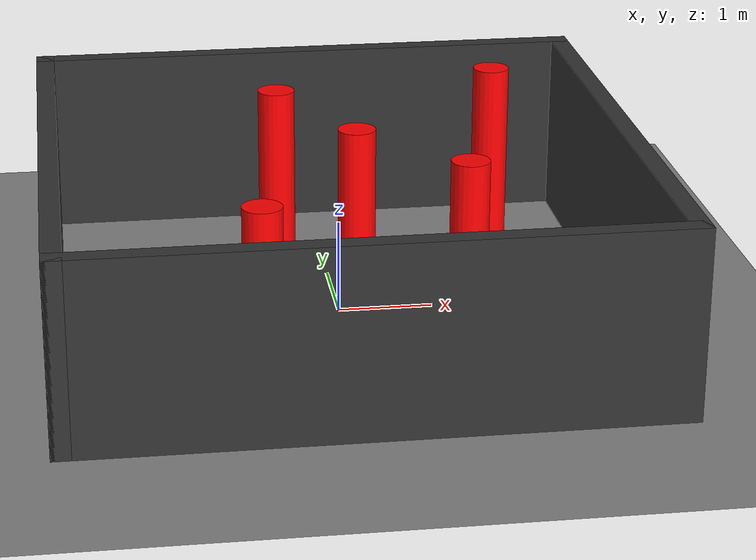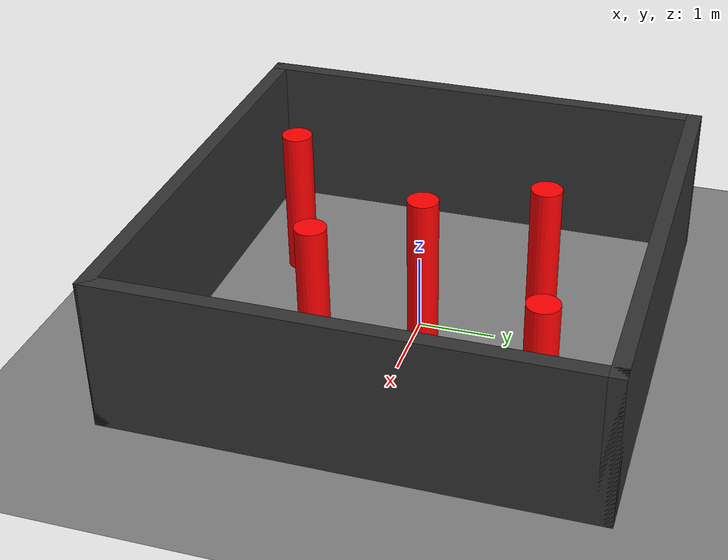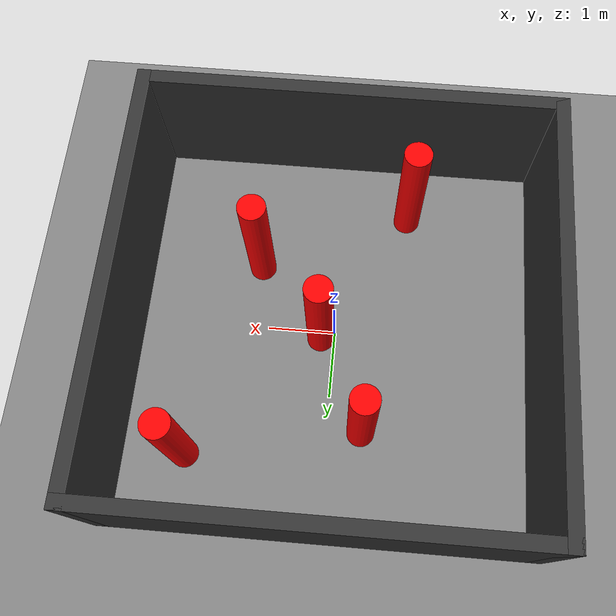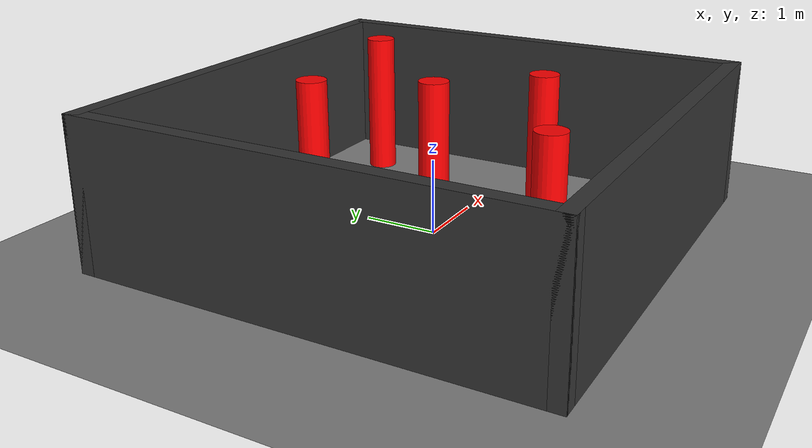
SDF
<?xml version="1.0"?>
<sdf version="1.6">
  <world name="compact_random_arena">

    <light name='sun_manual' type='directional'>
      <cast_shadows>1</cast_shadows>
      <pose>0 0 10 0 0 0</pose>
      <diffuse>0.8 0.8 0.8 1</diffuse>
      <specular>0.2 0.2 0.2 1</specular>
      <attenuation>
        <range>1000</range>
        <constant>0.9</constant>
        <linear>0.01</linear>
        <quadratic>0.001</quadratic>
      </attenuation>
      <direction>-0.5 0.1 -0.9</direction>
    </light>

    <model name='ground_plane'>
      <static>1</static>
      <link name='link'>
        <collision name='collision'>
          <geometry><plane><normal>0 0 1</normal><size>100 100</size></plane></geometry>
          <surface><friction><ode><mu>100</mu><mu2>50</mu2></ode></friction></surface>
        </collision>
        <visual name='visual'>
          <geometry><plane><normal>0 0 1</normal><size>100 100</size></plane></geometry>
          <material><ambient>0.5 0.5 0.5 1</ambient><diffuse>0.5 0.5 0.5 1</diffuse></material>
        </visual>
      </link>
    </model>

    <scene>
      <ambient>0.4 0.4 0.4 1</ambient>
      <background>0.7 0.7 0.7 1</background>
      <shadows>false</shadows>
    </scene>

    <physics type="ode">
      <real_time_update_rate>1000.0</real_time_update_rate>
      <max_step_size>0.001</max_step_size>
      <real_time_factor>1</real_time_factor>
      <ode>
        <solver><type>quick</type><iters>150</iters><sor>1.4</sor></solver>
        <constraints><cfm>0.00001</cfm><erp>0.2</erp></constraints>
      </ode>
    </physics>

    <plugin name="gazebo_ros_state" filename="libgazebo_ros_state.so">
      <ros><namespace>/gazebo</namespace></ros>
      <update_rate>1.0</update_rate>
    </plugin>

    <model name='wall_n'><static>1</static><pose>0 3 1 0 0 0</pose><link name='l'><collision name='c'><geometry><box><size>6.2 0.2 2</size></box></geometry></collision><visual name='v'><geometry><box><size>6.2 0.2 2</size></box></geometry><material><ambient>0.2 0.2 0.2 1</ambient><diffuse>0.2 0.2 0.2 1</diffuse></material></visual></link></model>
    <model name='wall_s'><static>1</static><pose>0 -3 1 0 0 0</pose><link name='l'><collision name='c'><geometry><box><size>6.2 0.2 2</size></box></geometry></collision><visual name='v'><geometry><box><size>6.2 0.2 2</size></box></geometry><material><ambient>0.2 0.2 0.2 1</ambient><diffuse>0.2 0.2 0.2 1</diffuse></material></visual></link></model>
    <model name='wall_e'><static>1</static><pose>3 0 1 0 0 0</pose><link name='l'><collision name='c'><geometry><box><size>0.2 6.2 2</size></box></geometry></collision><visual name='v'><geometry><box><size>0.2 6.2 2</size></box></geometry><material><ambient>0.2 0.2 0.2 1</ambient><diffuse>0.2 0.2 0.2 1</diffuse></material></visual></link></model>
    <model name='wall_w'><static>1</static><pose>-3 0 1 0 0 0</pose><link name='l'><collision name='c'><geometry><box><size>0.2 6.2 2</size></box></geometry></collision><visual name='v'><geometry><box><size>0.2 6.2 2</size></box></geometry><material><ambient>0.2 0.2 0.2 1</ambient><diffuse>0.2 0.2 0.2 1</diffuse></material></visual></link></model>

    <model name='obs_1'> <pose>-0.5 1.5 1 0 0 0</pose> <static>1</static> <link name='l'><collision name='c'><geometry><cylinder><radius>0.2</radius><length>2</length></cylinder></geometry></collision><visual name='v'><geometry><cylinder><radius>0.2</radius><length>2</length></cylinder></geometry><material><ambient>1 0 0 1</ambient><diffuse>1 0 0 1</diffuse></material></visual></link></model>
    <model name='obs_2'> <pose>1.2 -1.0 1 0 0 0</pose> <static>1</static> <link name='l'><collision name='c'><geometry><cylinder><radius>0.2</radius><length>2</length></cylinder></geometry></collision><visual name='v'><geometry><cylinder><radius>0.2</radius><length>2</length></cylinder></geometry><material><ambient>1 0 0 1</ambient><diffuse>1 0 0 1</diffuse></material></visual></link></model>
    <model name='obs_3'> <pose>-1.0 -2.0 1 0 0 0</pose> <static>1</static> <link name='l'><collision name='c'><geometry><cylinder><radius>0.2</radius><length>2</length></cylinder></geometry></collision><visual name='v'><geometry><cylinder><radius>0.2</radius><length>2</length></cylinder></geometry><material><ambient>1 0 0 1</ambient><diffuse>1 0 0 1</diffuse></material></visual></link></model>
    <model name='obs_4'> <pose>2.0 2.0 1 0 0 0</pose> <static>1</static> <link name='l'><collision name='c'><geometry><cylinder><radius>0.2</radius><length>2</length></cylinder></geometry></collision><visual name='v'><geometry><cylinder><radius>0.2</radius><length>2</length></cylinder></geometry><material><ambient>1 0 0 1</ambient><diffuse>1 0 0 1</diffuse></material></visual></link></model>
    <model name='obs_5'> <pose>0.2 0.1 1 0 0 0</pose> <static>1</static> <link name='l'><collision name='c'><geometry><cylinder><radius>0.2</radius><length>2</length></cylinder></geometry></collision><visual name='v'><geometry><cylinder><radius>0.2</radius><length>2</length></cylinder></geometry><material><ambient>1 0 0 1</ambient><diffuse>1 0 0 1</diffuse></material></visual></link></model>

    <gui fullscreen='0'>
      <camera name='user_camera'>
        <pose>4.0 -4.0 4.0 0 0.5 2.4</pose>
        <view_controller>orbit</view_controller>
      </camera>
    </gui>

  </world>
</sdf>
